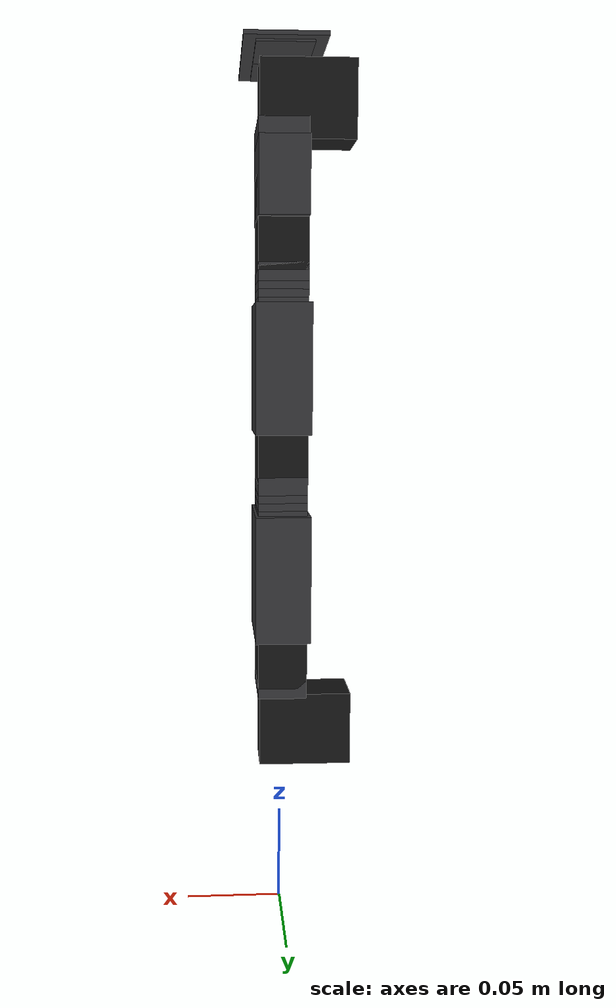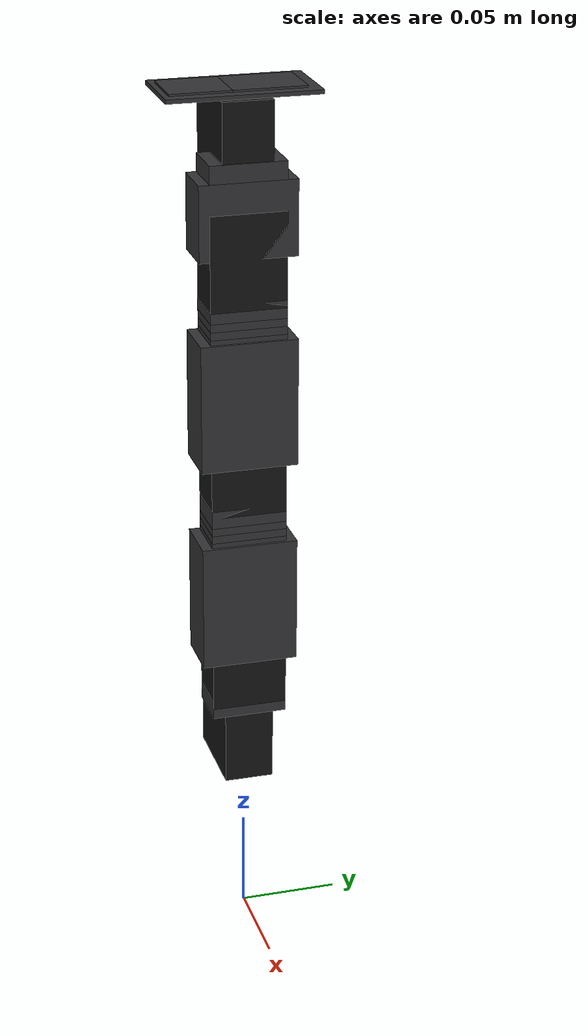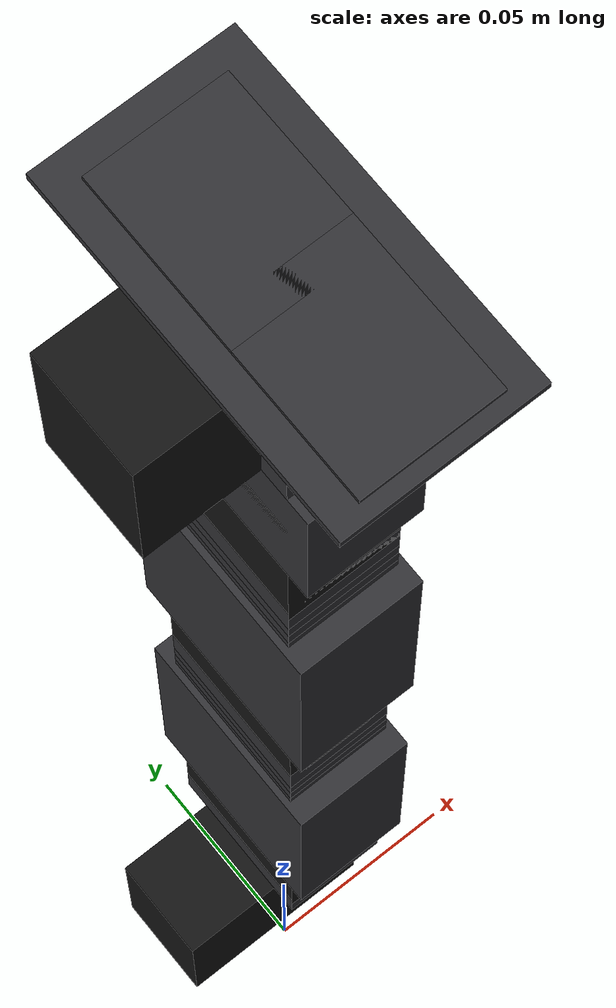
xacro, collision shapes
<?xml version="1.0"?>
<robot xmlns:xacro="http://www.ros.org/wiki/xacro" name="phantomx_arm">
    <xacro:arg name="initial_positions_file" default="initial_positions.yaml" />

    <!-- Import phantomx_arm urdf file -->
    <xacro:include filename="$(find phantomx_arm_description)/urdf/phantomx_arm.urdf.xacro" />

    <!-- Import control_xacro -->
    <xacro:include filename="phantomx_arm.ros2_control_hw.xacro" />

    <xacro:phantomx_arm_ros2_control name="PhantomXArmSystem" initial_positions_file="$(arg initial_positions_file)"/>

</robot>

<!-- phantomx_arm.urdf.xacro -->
<!-- Describe URDF for PhantomX Pincher Arm -->
<robot name="phantomx_arm" xmlns:xacro="http://ros.org/wiki/xacro">

    <!-- We can configure joints velocity limit and lower/upper limits
          to allow access to different operational areas, e.g. left handed vs. right handed robot -->
    <xacro:property name="joints_vlimit" value="1.571"/>
    <xacro:property name="pan_llimit" value="-2.617"/>
    <xacro:property name="pan_ulimit" value="2.617"/>
    <xacro:property name="shoulder_llimit" value="-2.2"/>
    <xacro:property name="shoulder_ulimit" value="2.16"/>
    <xacro:property name="elbow_llimit" value="-2.42"/>
    <xacro:property name="elbow_ulimit" value="2.38"/>
    <xacro:property name="wrist_llimit" value="-1.72"/>
    <xacro:property name="wrist_ulimit" value="1.68"/>

    <!-- Included URDF Files -->

     <!-- Pincher arm is same as Turtlebot -->
    <xacro:include filename="$(find phantomx_arm_description)/urdf/phantomx_arm.xacro"/>

    <!-- As we don't have here a turtlebot base, add a base_link link as its location reference -->
    <link name="base_link"/>

    <!-- Phantomx arm macro -->
    <xacro:phantomx_arm parent="base_link" color="Gray" gripper_color="Gray"   pincher_gripper="true">
      <origin xyz="0.0 0.0 0.1"/>
    </xacro:phantomx_arm>
</robot>

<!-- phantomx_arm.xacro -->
<!-- Arm description for PhantomX Pincher arm -->
<robot xmlns:xacro="http://ros.org/wiki/xacro">
  <xacro:include filename="$(find phantomx_arm_description)/urdf/arm_hardware.xacro"/>

  <material name="White">
    <color rgba="0.87 0.90 0.87 1.0"/>
  </material>
  <material name="Black">
    <color rgba="0.08 0.08 0.08 1.0"/>
  </material>
  <material name="Gray">
    <color rgba="0.2 0.2 0.21 1.0"/>
  </material>
  <material name="Green">
    <color rgba="0.22 0.32 0.14 1.0"/>
  </material>

  <xacro:macro name="phantomx_arm" params="parent color pincher_gripper gripper_color *origin">
    <link name="arm_base_link"/>
    <joint name="arm_base_joint" type="fixed">
      <xacro:insert_block name="origin"/>
      <parent link="${parent}"/>
      <child link="arm_base_link"/>
    </joint>

    <!-- fake gripper_link joint gives us a free servo!
         this makes us 5DOF and saves you $44.90
         that's a lot of coin! -->
    <link name="gripper_fake_link"/>
    <joint name="gripper_fake_link_joint" type="revolute">
      <origin xyz="0 0 0.112" rpy="0 -1.57 0"/>
      <parent link="arm_wrist_flex_link"/>
      <child link="gripper_fake_link"/>
      <limit effort="30" velocity="1.57" lower="-3.14" upper="3.14"/>
      <axis xyz="1 0 0"/>
    </joint>

    <link name="gripper_link"/>
    <joint name="gripper_link_joint" type="revolute">
      <origin xyz="0 0 0" rpy="0 0 0"/>
      <parent link="gripper_fake_link"/>
      <child link="gripper_link"/>
      <limit effort="30" velocity="1.57" lower="-3.14" upper="3.14"/>
      <axis xyz="0 0 1"/>
    </joint>

    <!-- shoulder pan joint -->
    <xacro:dynamixel_AX12_fixed parent="arm_base_link" name="arm_shoulder_pan_servo">
      <origin xyz="0 0 0" rpy="${M_PI/2} 0 ${M_PI/2}"/>
    </xacro:dynamixel_AX12_fixed>
    <xacro:bioloid_F3_revolute parent="arm_shoulder_pan_servo_link" name="arm_shoulder_pan" color="${color}"
                         vlimit="${joints_vlimit}" llimit="${pan_llimit}" ulimit="${pan_ulimit}">
      <origin xyz="0 ${AX12_WIDTH/2} 0" rpy="${-M_PI/2} ${M_PI/2} ${M_PI}"/>
    </xacro:bioloid_F3_revolute>

    <!-- shoulder lift joint -->
    <xacro:dynamixel_AX12_fixed parent="arm_shoulder_pan_link" name="arm_shoulder_lift_servo">
      <origin xyz="0 0 ${-AX12_HEIGHT-F10_HEIGHT+0.001}" rpy="0 ${M_PI} 0"/>
    </xacro:dynamixel_AX12_fixed>
    <xacro:bioloid_F4_revolute parent="arm_shoulder_lift_servo_link" name="arm_shoulder_lift" color="${color}"
                         vlimit="${joints_vlimit}" llimit="${shoulder_llimit}" ulimit="${shoulder_ulimit}">
      <origin xyz="0 0 0" rpy="0 0 0"/>
    </xacro:bioloid_F4_revolute>
    <xacro:bioloid_F10_fixed parent="arm_shoulder_lift_link" name="arm_shoulder_F10_0" color="${color}">
      <origin xyz="0 0 ${F4_HEIGHT+F10_HEIGHT/2}" rpy="0 0 0"/>
    </xacro:bioloid_F10_fixed>
    <xacro:bioloid_F10_fixed parent="arm_shoulder_F10_0_link" name="arm_shoulder_F10_1" color="${color}">
      <origin xyz="0 0 ${F10_HEIGHT}" rpy="0 0 0"/>
    </xacro:bioloid_F10_fixed>
    <xacro:bioloid_F10_fixed parent="arm_shoulder_F10_1_link" name="arm_shoulder_F10_2" color="${color}">
      <origin xyz="0 0 ${F10_HEIGHT}" rpy="0 0 0"/>
    </xacro:bioloid_F10_fixed>
    <xacro:bioloid_F3_fixed parent="arm_shoulder_F10_2_link" name="arm_shoulder_F3_0" color="${color}">
      <origin xyz="0 0 ${F10_HEIGHT/2}" rpy="0 ${M_PI} 0"/>
    </xacro:bioloid_F3_fixed>

    <!-- elbow joint -->
    <xacro:dynamixel_AX12_fixed parent="arm_shoulder_F3_0_link" name="arm_elbow_flex_servo">
      <origin xyz="0 0 ${-AX12_HEIGHT-F10_HEIGHT+0.001}" rpy="0 ${M_PI} 0"/>
    </xacro:dynamixel_AX12_fixed>
    <xacro:bioloid_F4_revolute parent="arm_elbow_flex_servo_link" name="arm_elbow_flex" color="${color}"
                         vlimit="${joints_vlimit}" llimit="${elbow_llimit}" ulimit="${elbow_ulimit}">
      <origin xyz="0 0 0" rpy="0 0 0"/>
    </xacro:bioloid_F4_revolute>
    <xacro:bioloid_F10_fixed parent="arm_elbow_flex_link" name="arm_elbow_F10_0" color="${color}">
      <origin xyz="0 0 ${F4_HEIGHT+F10_HEIGHT/2}" rpy="0 0 0"/>
    </xacro:bioloid_F10_fixed>
    <xacro:bioloid_F10_fixed parent="arm_elbow_F10_0_link" name="arm_elbow_F10_1" color="${color}">
      <origin xyz="0 0 ${F10_HEIGHT}" rpy="0 0 0"/>
    </xacro:bioloid_F10_fixed>
    <xacro:bioloid_F10_fixed parent="arm_elbow_F10_1_link" name="arm_elbow_F10_2" color="${color}">
      <origin xyz="0 0 ${F10_HEIGHT}" rpy="0 0 0"/>
    </xacro:bioloid_F10_fixed>
    <xacro:bioloid_F3_fixed parent="arm_elbow_F10_2_link" name="arm_elbow_F3_0" color="${color}">
      <origin xyz="0 0 ${F10_HEIGHT/2}" rpy="0 ${M_PI} 0"/>
    </xacro:bioloid_F3_fixed>

    <!-- wrist joint -->
    <xacro:dynamixel_AX12_fixed parent="arm_elbow_F3_0_link" name="arm_wrist_flex_servo">
      <origin xyz="0 0 ${-AX12_HEIGHT-F10_HEIGHT+0.001}" rpy="0 ${M_PI} 0"/>
    </xacro:dynamixel_AX12_fixed>
    <xacro:bioloid_F2_revolute parent="arm_wrist_flex_servo_link" name="arm_wrist_flex" color="${color}"
                         vlimit="${joints_vlimit}" llimit="${wrist_llimit}" ulimit="${wrist_ulimit}">
      <origin xyz="0 0 0" rpy="0 0 0"/>
    </xacro:bioloid_F2_revolute>

  <!-- gripper - Pincher Gripper -->
  <xacro:include filename="$(find phantomx_arm_description)/urdf/phantomx_gripper.xacro"/>

  </xacro:macro>

</robot>

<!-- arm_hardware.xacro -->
<!-- Basic URDF components for PhantomX Pincher Arm-->
<robot xmlns:xacro="http://ros.org/wiki/xacro">
  <xacro:property name="M_PI" value="3.14159"/>
  <xacro:property name="M_SCALE" value="0.001"/>
  <xacro:property name="F10_HEIGHT" value="0.004"/>
  <xacro:property name="F4_HEIGHT" value="0.0525"/>
  <xacro:property name="F3_HEIGHT" value="0.009"/>
  <xacro:property name="AX12_HEIGHT" value="0.0385"/>
  <xacro:property name="AX12_WIDTH" value="0.038"/>
  <xacro:property name="AX12_LENGTH" value="0.050"/>
  <xacro:property name="F2_HEIGHT" value="0.0265"/>

  <xacro:macro name="arm_mount" params="parent name color *origin">
    <joint name="${name}_joint" type="fixed">
      <xacro:insert_block name="origin"/>
      <parent link="${parent}"/>
      <child link="${name}_link"/>
    </joint>

    <link name="${name}_link">
      <inertial>
        <mass value="0.018"/>
        <origin xyz="0 0 0"/>
        <inertia ixx="0.000001" ixy="0.0" ixz="0.0"
                 iyy="0.000001" iyz="0.0"
                 izz="0.000001"/>
      </inertial>

      <visual>
        <origin xyz="-0.028 -0.0493 0.014" rpy="0.0 0.0 -${M_PI/2}"/>
        <geometry>
          <mesh filename="package://phantomx_arm_description/meshes/mount.stl" scale="${M_SCALE} ${M_SCALE} ${M_SCALE}"/>
        </geometry>
        <material name="${color}"/>
      </visual>

      <collision>
        <origin xyz="-0.01 0.0 0.0165" rpy="0.0 0.0 0.0"/>
        <geometry>
          <box size="0.074 0.074 0.004"/>
        </geometry>
      </collision>
    </link>

    <gazebo reference="${name}_link">
      <material>Gazebo/${color}</material>
      <selfCollide>true</selfCollide>
      <gravity>true</gravity>
    </gazebo>
  </xacro:macro>

  <xacro:macro name="finger_fixed" params="parent name color *origin">
    <joint name="${name}_joint" type="fixed">
      <xacro:insert_block name="origin"/>
      <parent link="${parent}"/>
      <child link="${name}_link"/>
    </joint>

    <link name="${name}_link">
      <inertial>
        <mass value="0.015"/>
        <origin xyz="0 0 0"/>
        <inertia ixx="0.000001" ixy="0.0" ixz="0.0"
                 iyy="0.000001" iyz="0.0"
                 izz="0.000001"/>
      </inertial>

      <visual>
        <origin xyz=" 0 0 0 " rpy="0 0 0"/>
        <geometry>
          <mesh filename="package://phantomx_arm_description/meshes/phantomx_finger.stl" scale="${M_SCALE} ${M_SCALE} ${M_SCALE}"/>
        </geometry>
        <material name="${color}"/>
      </visual>

      <collision>
        <origin xyz="0.02645 0.0 -0.00655" rpy="0 0 0"/>
        <geometry>
          <box size="0.0783 0.03801 0.0193"/>
        </geometry>
      </collision>
    </link>

    <gazebo reference="${name}_link">
      <material>Gazebo/${color}</material>
      <selfCollide>true</selfCollide>
      <gravity>true</gravity>
    </gazebo>
  </xacro:macro>

  <xacro:macro name="dynamixel_AX12_fixed" params="parent name *origin">
    <joint name="${name}_joint" type="fixed">
      <xacro:insert_block name="origin"/>
      <parent link="${parent}"/>
      <child link="${name}_link"/>
    </joint>

    <link name="${name}_link">
      <inertial>
        <mass value="0.055"/>
        <origin xyz="0 0 0"/>
        <inertia ixx="0.000017012" ixy="0.0" ixz="0.0"
                 iyy="0.000013258" iyz="0.0"
                 izz="0.000009483"/>
      </inertial>

      <visual>
        <origin xyz=" 0 0 0 " rpy="0 0 0"/>
        <geometry>
          <mesh filename="package://phantomx_arm_description/meshes/ax12_box.stl" scale="${M_SCALE} ${M_SCALE} ${M_SCALE}"/>
        </geometry>
        <material name="Black"/>
      </visual>

      <collision>
        <origin xyz="0.0 0.0 -0.01241" rpy="0 0 0"/>
        <geometry>
          <box size="0.025 0.038 0.04762"/>
        </geometry>
      </collision>
    </link>

    <gazebo reference="${name}_link">
      <material>Gazebo/Black</material>
      <selfCollide>true</selfCollide>
      <gravity>true</gravity>
    </gazebo>
  </xacro:macro>

  <xacro:macro name="bioloid_F10_fixed" params="parent name color *origin">
    <joint name="${name}_joint" type="fixed">
      <xacro:insert_block name="origin"/>
      <parent link="${parent}"/>
      <child link="${name}_link"/>
    </joint>

    <link name="${name}_link">
      <inertial>
        <mass value="0.004"/>
        <origin xyz="0 0 0"/>
        <inertia ixx="0.000001" ixy="0.0" ixz="0.0"
                 iyy="0.000001" iyz="0.0"
                 izz="0.000001"/>
      </inertial>

      <visual>
        <origin xyz=" 0 0 0 " rpy="0 0 0"/>
        <geometry>
          <mesh filename="package://phantomx_arm_description/meshes/F10.stl" scale="${M_SCALE} ${M_SCALE} ${M_SCALE}"/>
        </geometry>
        <material name="${color}"/>
      </visual>

      <collision>
        <origin xyz="0.0 0.0 0.0" rpy="0 0 0"/>
        <geometry>
          <box size="0.025 0.038 0.004"/>
        </geometry>
      </collision>
    </link>

    <gazebo reference="${name}_link">
      <material>Gazebo/${color}</material>
      <selfCollide>true</selfCollide>
      <gravity>true</gravity>
    </gazebo>
  </xacro:macro>

  <xacro:macro name="bioloid_F3_fixed" params="parent name color *origin">
    <joint name="${name}_joint" type="fixed">
      <xacro:insert_block name="origin"/>
      <parent link="${parent}"/>
      <child link="${name}_link"/>
    </joint>

    <link name="${name}_link">
      <inertial>
        <mass value="0.005"/>
        <origin xyz="0 0 0"/>
        <inertia ixx="0.000001" ixy="0.0" ixz="0.0"
                 iyy="0.000001" iyz="0.0"
                 izz="0.000001"/>
      </inertial>

      <visual>
        <origin xyz=" 0 0 0 " rpy="0 0 0"/>
        <geometry>
          <mesh filename="package://phantomx_arm_description/meshes/F3.stl" scale="${M_SCALE} ${M_SCALE} ${M_SCALE}"/>
        </geometry>
        <material name="${color}"/>
      </visual>

      <collision>
        <origin xyz="0.0 0.0 -0.0045" rpy="0 0 0"/>
        <geometry>
          <box size="0.025 0.038 0.009"/>
        </geometry>
      </collision>
    </link>

    <gazebo reference="${name}_link">
      <material>Gazebo/${color}</material>
      <selfCollide>true</selfCollide>
      <gravity>true</gravity>
    </gazebo>
  </xacro:macro>

  <xacro:macro name="bioloid_F3_revolute" params="parent name color llimit ulimit vlimit *origin">
    <joint name="${name}_joint" type="revolute">
      <xacro:insert_block name="origin"/>
      <axis xyz="0 0 -1"/>
      <limit effort="30" velocity="${vlimit}" lower="${llimit}" upper="${ulimit}"/>
      <dynamics friction="0.13"/>
      <parent link="${parent}"/>
      <child link="${name}_link"/>
    </joint>

    <link name="${name}_link">
      <inertial>
        <mass value="0.008"/>
        <origin xyz="0 0 0"/>
        <inertia ixx="0.000001" ixy="0.0" ixz="0.0"
                 iyy="0.000001" iyz="0.0"
                 izz="0.000001"/>
      </inertial>

      <visual>
        <origin xyz=" 0 0 0 " rpy="0 0 0"/>
        <geometry>
          <mesh filename="package://phantomx_arm_description/meshes/F3.stl" scale="${M_SCALE} ${M_SCALE} ${M_SCALE}"/>
        </geometry>
        <material name="${color}"/>
      </visual>

      <collision>
        <origin xyz="0.0 0.0 -0.0045" rpy="0 0 0"/>
        <geometry>
          <box size="0.025 0.038 0.009"/>
        </geometry>
      </collision>
    </link>

    <gazebo reference="${name}_link">
      <material>Gazebo/${color}</material>
      <selfCollide>true</selfCollide>
      <gravity>true</gravity>
    </gazebo>
  </xacro:macro>

  <xacro:macro name="bioloid_F2_revolute" params="parent name color llimit ulimit vlimit *origin">
    <joint name="${name}_joint" type="revolute">
      <xacro:insert_block name="origin"/>
      <axis xyz="0 1 0"/>
      <limit effort="30" velocity="${vlimit}" lower="${llimit}" upper="${ulimit}"/>
      <dynamics friction="0.13"/>
      <parent link="${parent}"/>
      <child link="${name}_link"/>
    </joint>

    <link name="${name}_link">
      <inertial>
        <mass value="0.010"/>
        <origin xyz="0 0 0"/>
        <inertia ixx="0.000001" ixy="0.0" ixz="0.0"
                 iyy="0.000001" iyz="0.0"
                 izz="0.000001"/>
      </inertial>

      <visual>
        <origin xyz=" 0 0 0 " rpy="0 0 0"/>
        <geometry>
          <mesh filename="package://phantomx_arm_description/meshes/F2.stl" scale="${M_SCALE} ${M_SCALE} ${M_SCALE}"/>
        </geometry>
        <material name="${color}"/>
      </visual>

      <collision>
        <origin xyz="0.0 0.0 0.00775" rpy="0 0 0"/>
        <geometry>
          <box size="0.025 0.0485 0.0375"/>
        </geometry>
      </collision>
    </link>

    <gazebo reference="${name}_link">
      <material>Gazebo/${color}</material>
      <selfCollide>true</selfCollide>
      <gravity>true</gravity>
    </gazebo>
  </xacro:macro>

  <xacro:macro name="bioloid_F4_revolute" params="parent name color llimit ulimit vlimit *origin">
    <joint name="${name}_joint" type="revolute">
      <xacro:insert_block name="origin"/>
      <axis xyz="0 1 0"/>
      <limit effort="30" velocity="${vlimit}" lower="${llimit}" upper="${ulimit}"/>
      <dynamics friction="0.13"/>
      <parent link="${parent}"/>
      <child link="${name}_link"/>
    </joint>

    <link name="${name}_link">
      <inertial>
        <mass value="0.016"/>
        <origin xyz="0 0 0"/>
        <inertia ixx="0.000001" ixy="0.0" ixz="0.0"
                 iyy="0.000001" iyz="0.0"
                 izz="0.000001"/>
      </inertial>

      <visual>
        <origin xyz=" 0 0 0 " rpy="0 0 0"/>
        <geometry>
          <mesh filename="package://phantomx_arm_description/meshes/F4.stl" scale="${M_SCALE} ${M_SCALE} ${M_SCALE}"/>
        </geometry>
        <material name="${color}"/>
      </visual>

      <collision>
        <origin xyz="0.0 0.0 0.0215" rpy="0 0 0"/>
        <geometry>
          <box size="0.028 0.0485 0.065"/>
        </geometry>
      </collision>
    </link>

    <gazebo reference="${name}_link">
      <material>Gazebo/${color}</material>
      <selfCollide>true</selfCollide>
      <gravity>true</gravity>
    </gazebo>
  </xacro:macro>

  <xacro:macro name="gripper_finger_base" params="parent name color *origin">
    <joint name="${name}_joint" type="fixed">
      <xacro:insert_block name="origin"/>
      <parent link="${parent}"/>
      <child link="${name}_link"/>
    </joint>

    <link name="${name}_link">
      <inertial>
        <mass value="0.00001"/>
        <origin xyz="0 0 0"/>
        <inertia ixx="1.0" ixy="0.0" ixz="0.0"
          iyy="1.0" iyz="0.0"
          izz="1.0"/>
      </inertial>
      <visual>
        <origin xyz="0.016 0 -.015 " rpy="${M_PI} ${-M_PI/2} ${M_PI/2}"/>
        <geometry>
          <mesh filename="package://phantomx_arm_description/meshes/pincher_finger_base.stl" scale=".01 .01 .01"/>
        </geometry>
        <material name="${color}"/>
      </visual>

      <collision>
        <origin xyz="0.015 0 -0.0135" rpy="0 0 0"/>
        <geometry>
          <box size="0.002 0.040 0.075"/>
        </geometry>
      </collision>
    </link >

    <gazebo reference="${name}_link">
      <material>Gazebo/${color}</material>
      <selfCollide>true</selfCollide>
      <gravity>true</gravity>
    </gazebo>
  </xacro:macro>

    <xacro:macro name="pincher_gripper" params="name color *origin">
      <link name="${name}_link">
      <inertial>
        <mass value="0.00001"/>
        <origin xyz="0 0 0"/>
        <inertia ixx="1.0" ixy="0.0" ixz="0.0"
          iyy="1.0" iyz="0.0"
          izz="1.0"/>
      </inertial>
      <visual>
        <xacro:insert_block name="origin"/>
        <geometry>
          <mesh filename="package://phantomx_arm_description/meshes/pincher_finger.stl" scale=".01 .01 .01"/>
        </geometry>
        <material name="${color}"/>
      </visual>
      <collision>
        <xacro:insert_block name="origin"/>
        <geometry>
          <box size="0.036 0.028 0.004"/>
        </geometry>
      </collision>
    </link>

      <gazebo reference="${name}_link">
      <material>Gazebo/${color}</material>
      <selfCollide>true</selfCollide>
      <gravity>true</gravity>
    </gazebo>
  </xacro:macro>
</robot>

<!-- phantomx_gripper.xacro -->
<!-- PhantomX Pincher Arm gripper URDF-->
<robot xmlns:xacro="http://ros.org/wiki/xacro">
    <xacro:bioloid_F3_fixed parent="arm_wrist_flex_link" name="arm_wrist_F3_0" color="${color}">
      <origin xyz="0 0 ${F2_HEIGHT}" rpy="0 ${M_PI} ${-M_PI}"/>
    </xacro:bioloid_F3_fixed>

    <!-- gripper joint -->
    <xacro:dynamixel_AX12_fixed parent="arm_wrist_F3_0_link" name="gripper_servo" >
      <origin xyz="0 0 ${-AX12_WIDTH/2}" rpy="${M_PI/2} ${M_PI} ${M_PI/2}"/>
    </xacro:dynamixel_AX12_fixed>

     <xacro:gripper_finger_base parent="gripper_servo_link" name="gripper_finger_base" color="${color}">
      <origin xyz="0.01  ${AX12_WIDTH} 0" rpy="${M_PI/2} ${-M_PI} ${M_PI/2}"/>
    </xacro:gripper_finger_base>

     <!-- Finger 1 -->
    <joint name="gripper_joint" type="prismatic">
      <origin xyz="0.03 0 0" rpy="0 0 0"/>
      <axis xyz="1 0 0"/>
      <limit effort="30" velocity="0.005" lower="-0.021" upper="0.001"/>
      <parent link="gripper_servo_link"/>
      <child link="gripper_active_link"/>
    </joint>

    <xacro:pincher_gripper name="gripper_active" color="${color}" >
      <origin xyz="-0.02 0.023 0" rpy="${-M_PI/2} 0 0"/>
    </xacro:pincher_gripper>

    <!-- Finger 2 -->
    <!-- Note: currently static but should be a Mimic of Finger 1 -->
    <joint name="gripper2_joint" type="fixed">
      <parent link="gripper_servo_link"/>
      <child link="gripper_active2_link"/>
    </joint>

    <xacro:pincher_gripper name="gripper_active2" color="${color}" >
      <origin xyz="-0.02 0.023 0" rpy="${-M_PI/2} ${M_PI} 0"/>
    </xacro:pincher_gripper>

    <!-- Using Mimic -->
    <!-- gripper 2 joint -->
</robot>
